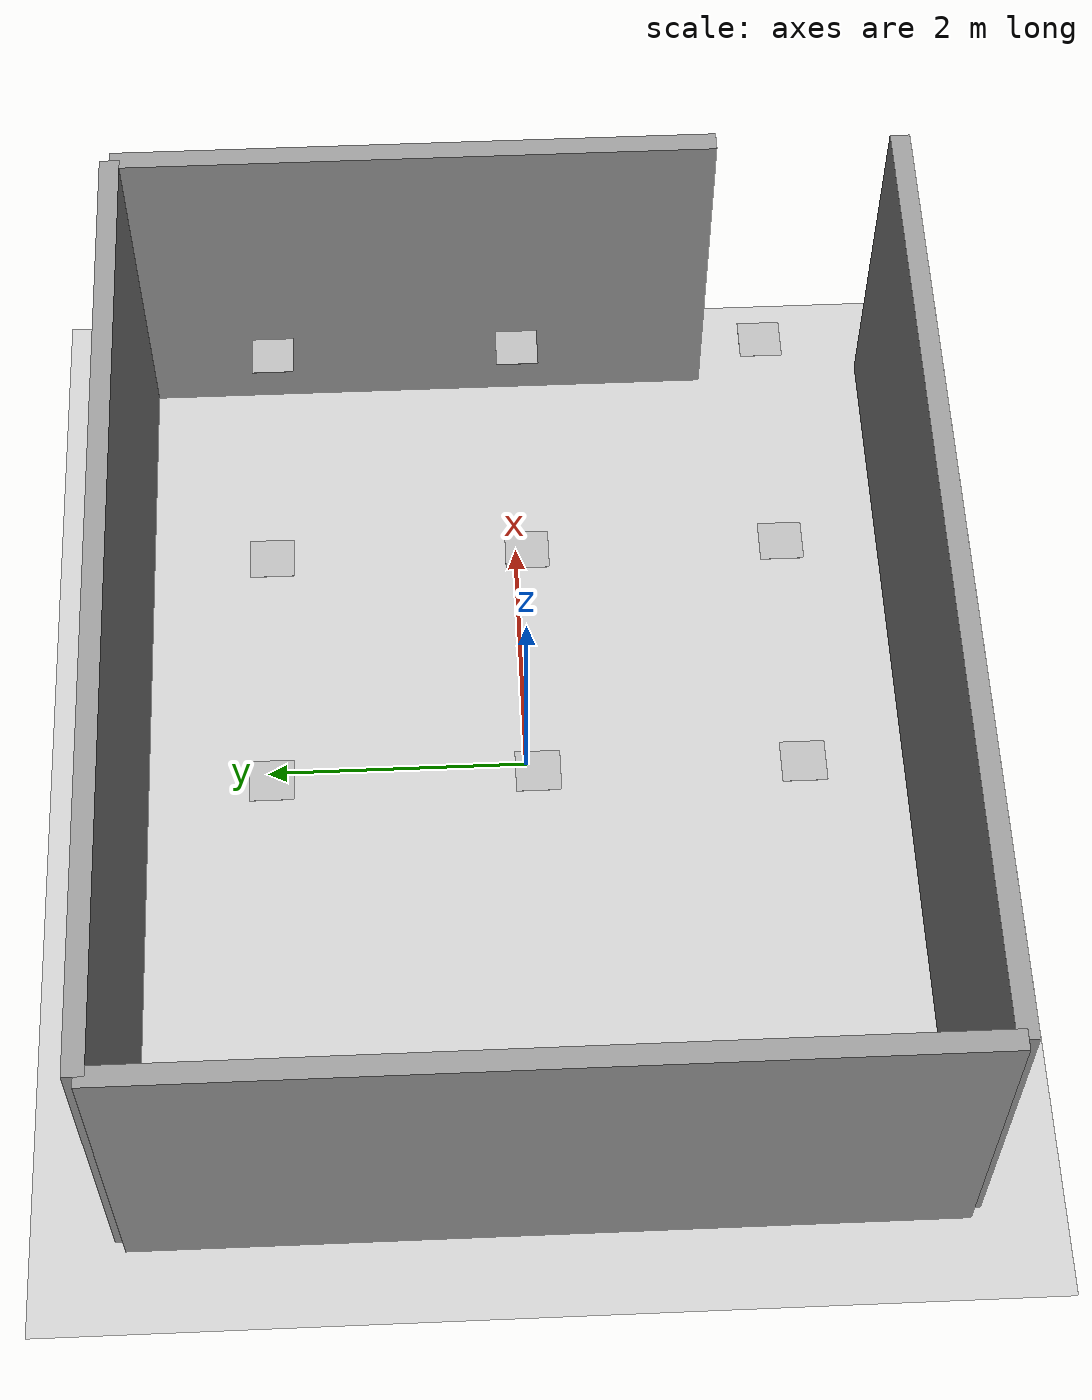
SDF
<?xml version="1.0" ?>
<sdf version="1.6">
 <world name="default">
    <include>
      <uri>model://ground_plane</uri>
    </include>
    <include>
      <uri>model://sun</uri>
    </include>

  <model name='Lab'>
    <pose frame=''>0 0 0 0 0 0</pose>

    <link name='Wall_1'>
      <collision name='Wall_1_Collision'>
        <geometry>
          <box>
            <size>4.6 0.15 3.25</size>
          </box>
        </geometry>
        <pose frame=''>0 0 1.25 0 0 0</pose>
      </collision>
      <visual name='Wall_1_Visual'>
        <pose frame=''>0 0 1.25 0 0 0</pose>
        <geometry>
          <box>
            <size>4.6 0.15 3.25</size>
          </box>
        </geometry>
        <material>
          <script>
            <uri>file://media/materials/scripts/gazebo.material</uri>
            <name>Gazebo/Grey</name>
          </script>
          <ambient>1 1 1 1</ambient>
        </material>
        <meta>
          <layer>0</layer>
        </meta>
      </visual>
      <pose frame=''>3.75 0.7 0 0 0 1.5708</pose>
    </link>

    <link name='Wall_2'>
      <collision name='Wall_2_Collision'>
        <geometry>
          <box>
            <size>7.5 0.15 3.25</size>
          </box>
        </geometry>
        <pose frame=''>0 0 1.25 0 0 0</pose>
      </collision>
      <visual name='Wall_2_Visual'>
        <pose frame=''>0 0 1.25 0 0 0</pose>
        <geometry>
          <box>
            <size>7.5 0.15 3.25</size>
          </box>
        </geometry>
        <material>
          <script>
            <uri>file://media/materials/scripts/gazebo.material</uri>
            <name>Gazebo/Grey</name>
          </script>
          <ambient>1 1 1 1</ambient>
        </material>
        <meta>
          <layer>0</layer>
        </meta>
      </visual>
      <pose frame=''>0 3 0 0 0 3.14159</pose>
    </link>

    <link name='Wall_3'>
      <collision name='Wall_3_Collision'>
        <geometry>
          <box>
            <size>6 0.15 3.25</size>
          </box>
        </geometry>
        <pose frame=''>0 0 1.25 0 0 0</pose>
      </collision>
      <visual name='Wall_3_Visual'>
        <pose frame=''>0 0 1.25 0 0 0</pose>
        <geometry>
          <box>
            <size>6 0.15 3.25</size>
          </box>
        </geometry>
        <material>
          <script>
            <uri>file://media/materials/scripts/gazebo.material</uri>
            <name>Gazebo/Grey</name>
          </script>
          <ambient>1 1 1 1</ambient>
        </material>
        <meta>
          <layer>0</layer>
        </meta>
      </visual>
      <pose frame=''>-3.75 0 0 0 0 -1.5708</pose>
    </link>

    <link name='Wall_4'>
      <collision name='Wall_4_Collision'>
        <geometry>
          <box>
            <size>7.5 0.15 3.25</size>
          </box>
        </geometry>
        <pose frame=''>0 0 1.25 0 0 0</pose>
      </collision>
      <visual name='Wall_4_Visual'>
        <pose frame=''>0 0 1.25 0 0 0</pose>
        <geometry>
          <box>
            <size>7.5 0.15 3.25</size>
          </box>
        </geometry>
        <material>
          <script>
            <uri>file://media/materials/scripts/gazebo.material</uri>
            <name>Gazebo/Grey</name>
          </script>
          <ambient>1 1 1 1</ambient>
        </material>
        <meta>
          <layer>0</layer>
        </meta>
      </visual>
      <pose frame=''>0 -3 0 0 0 0</pose>
    </link>

    <include>
      <uri>model://qr_code_laboratorio</uri>
      <pose>0 0 3 0 0 0</pose>
    </include>
    <static>1</static>
  </model>
 </world>
</sdf>

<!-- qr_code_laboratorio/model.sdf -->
<sdf version="1.4">
  <model name="qr_code">

   <link name="qr_code_0">
      <pose>0 0 0 0 0 0</pose>
      <collision name="collision">
        <geometry>
            <box>
            <size>0.2968625 0.2968625 0.001</size>
          </box>
        </geometry>
      </collision>
      <visual name="visual">
        <geometry>
          <box>
            <size>0.2968625 0.2968625 0.001</size>
          </box>
        </geometry>
        <material>
		  <script>
            <uri>model://qr_code_laboratorio/materials/scripts/qr_code_0.material</uri>
            <uri>model://qr_code_laboratorio/materials/textures/qr_code_0.png</uri>
            <name>qr_code_0/Image</name>
          </script>
        </material>
      </visual>
    </link>

    <link name="qr_code 1">
      <pose>1.75 0 0 0 0 0</pose>
      <collision name="collision">
        <geometry>
            <box>
            <size>0.2968625 0.2968625 0.001</size>
          </box>
        </geometry>
      </collision>
      <visual name="visual">
        <geometry>
          <box>
            <size>0.2968625 0.2968625 0.001</size>
          </box>
        </geometry>
        <material>
		  <script>
            <uri>model://qr_code_laboratorio/materials/scripts/qr_code_1.material</uri>
            <uri>model://qr_code_laboratorio/materials/textures/qr_code_1.png</uri>
            <name>qr_code_1/Image</name>
          </script>
        </material>
      </visual>
    </link>

    <link name="qr_code 2">
      <pose>1.75 1.75 0 0 0 0</pose>
      <collision name="collision">
        <geometry>
            <box>
            <size>0.2968625 0.2968625 0.001</size>
          </box>
        </geometry>
      </collision>
      <visual name="visual">
        <geometry>
          <box>
            <size>0.2968625 0.2968625 0.001</size>
          </box>
        </geometry>
        <material>
		  <script>
            <uri>model://qr_code_laboratorio/materials/scripts/qr_code_2.material</uri>
            <uri>model://qr_code_laboratorio/materials/textures/qr_code_2.png</uri>
            <name>qr_code_2/Image</name>
          </script>
        </material>
      </visual>
    </link>

    <link name="qr_code_3">
      <pose>0 1.75 0 0 0 0</pose>
      <collision name="collision">
        <geometry>
            <box>
            <size>0.2968625 0.2968625 0.001</size>
          </box>
        </geometry>
      </collision>
      <visual name="visual">
        <geometry>
          <box>
            <size>0.2968625 0.2968625 0.001</size>
          </box>
        </geometry>
        <material>
		  <script>
            <uri>model://qr_code_laboratorio/materials/scripts/qr_code_3.material</uri>
            <uri>model://qr_code_laboratorio/materials/textures/qr_code_3.png</uri>
            <name>qr_code_3/Image</name>
          </script>
        </material>
      </visual>
    </link>

    <link name="qr_code 4">
      <pose>-1.75 1.75 0 0 0 0</pose>
      <collision name="collision">
        <geometry>
            <box>
            <size>0.2968625 0.2968625 0.001</size>
          </box>
        </geometry>
      </collision>
      <visual name="visual">
        <geometry>
          <box>
            <size>0.2968625 0.2968625 0.001</size>
          </box>
        </geometry>
        <material>
		  <script>
            <uri>model://qr_code_laboratorio/materials/scripts/qr_code_4.material</uri>
            <uri>model://qr_code_laboratorio/materials/textures/qr_code_4.png</uri>
            <name>qr_code_4/Image</name>
          </script>
        </material>
      </visual>
	</link>

	<link name="qr_code_5">
      <pose>-1.75 0 0 0 0 0</pose>
      <collision name="collision">
        <geometry>
            <box>
            <size>0.2968625 0.2968625 0.001</size>
          </box>
        </geometry>
      </collision>
      <visual name="visual">
        <geometry>
          <box>
            <size>0.2968625 0.2968625 0.001</size>
          </box>
        </geometry>
        <material>
		  <script>
            <uri>model://qr_code_laboratorio/materials/scripts/qr_code_5.material</uri>
            <uri>model://qr_code_laboratorio/materials/textures/qr_code_5.png</uri>
            <name>qr_code_5/Image</name>
          </script>
        </material>
      </visual>
    </link>

	<link name="qr_code 6">
      <pose>-1.75 -1.75 0 0 0 0</pose>
      <collision name="collision">
        <geometry>
            <box>
            <size>0.2968625 0.2968625 0.001</size>
          </box>
        </geometry>
      </collision>
      <visual name="visual">
        <geometry>
          <box>
            <size>0.2968625 0.2968625 0.001</size>
          </box>
        </geometry>
        <material>
		  <script>
            <uri>model://qr_code_laboratorio/materials/scripts/qr_code_6.material</uri>
            <uri>model://qr_code_laboratorio/materials/textures/qr_code_6.png</uri>
            <name>qr_code_6/Image</name>
          </script>
        </material>
      </visual>
    </link>

    <link name="qr_code_7">
      <pose>0 -1.75 0 0 0 0</pose>
      <collision name="collision">
        <geometry>
            <box>
            <size>0.2968625 0.2968625 0.001</size>
          </box>
        </geometry>
      </collision>
      <visual name="visual">
        <geometry>
          <box>
            <size>0.2968625 0.2968625 0.001</size>
          </box>
        </geometry>
        <material>
		  <script>
            <uri>model://qr_code_laboratorio/materials/scripts/qr_code_7.material</uri>
            <uri>model://qr_code_laboratorio/materials/textures/qr_code_7.png</uri>
            <name>qr_code_7/Image</name>
          </script>
        </material>
      </visual>
    </link>

    <link name="qr_code 8">
      <pose>1.75 -1.75 0 0 0 0</pose>
      <collision name="collision">
        <geometry>
            <box>
            <size>0.2968625 0.2968625 0.001</size>
          </box>
        </geometry>
      </collision>
      <visual name="visual">
        <geometry>
          <box>
            <size>0.2968625 0.2968625 0.001</size>
          </box>
        </geometry>
        <material>
		  <script>
            <uri>model://qr_code_laboratorio/materials/scripts/qr_code_8.material</uri>
            <uri>model://qr_code_laboratorio/materials/textures/qr_code_8.png</uri>
            <name>qr_code_8/Image</name>
          </script>
        </material>
      </visual>
    </link>

  </model>
</sdf>
